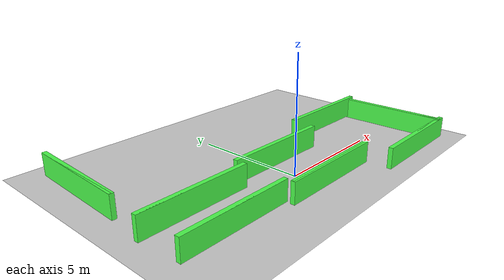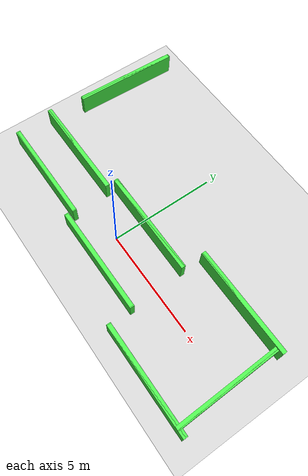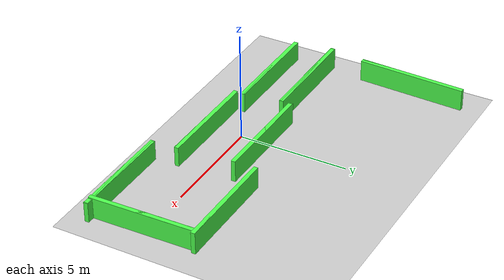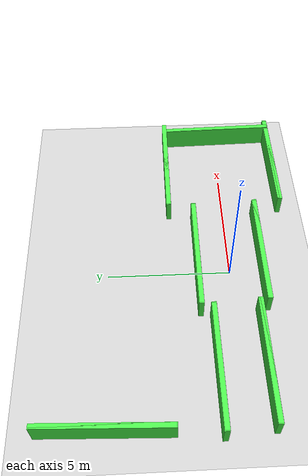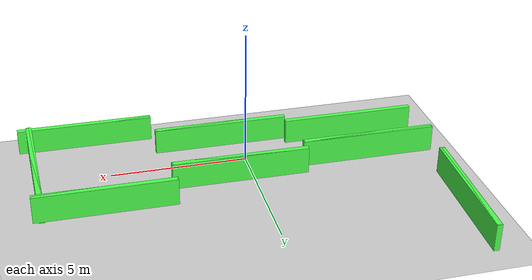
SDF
<sdf version="1.6">
 <world name="default">
  <light name="sun" type="directional">
   <pose>0 0 10 0 -0 0</pose>
   <diffuse>0.8 0.8 0.8 1</diffuse>
   <specular>0.1 0.1 0.1 1</specular>
   <attenuation>
    <range>1000</range>
    <constant>0.9</constant>
    <linear>0.01</linear>
    <quadratic>0.001</quadratic>
   </attenuation>
   <direction>-0.5 0.5 -1</direction>
  </light>
  <model name="ground_plane">
   <static>1</static>
   <link name="link">
    <collision name="collision">
     <geometry><plane><normal>0 0 1</normal><size>100 100</size></plane></geometry>
     <surface><friction><ode><mu>100</mu><mu2>50</mu2></ode></friction></surface>
    </collision>
    <visual name="visual">
     <cast_shadows>0</cast_shadows>
     <geometry><plane><normal>0 0 1</normal><size>100 100</size></plane></geometry>
     <material>
      <script><uri>file://media/materials/scripts/gazebo.material</uri><name>Gazebo/Grey</name></script>
     </material>
    </visual>
   </link>
  </model>
  <gravity>0 0 -9.8</gravity>
  <magnetic_field>6e-06 2.3e-05 -4.2e-05</magnetic_field>
  <atmosphere type="adiabatic"/>
  <physics name="default_physics" default="0" type="ode">
   <max_step_size>0.001</max_step_size>
   <real_time_factor>1</real_time_factor>
   <real_time_update_rate>1000</real_time_update_rate>
  </physics>
  <scene><ambient>0.4 0.4 0.4 1</ambient><background>0.7 0.7 0.7 1</background><shadows>1</shadows></scene>
  <spherical_coordinates>
   <surface_model>EARTH_WGS84</surface_model>
   <latitude_deg>0</latitude_deg>
   <longitude_deg>0</longitude_deg>
   <elevation>0</elevation>
   <heading_deg>0</heading_deg>
  </spherical_coordinates>
  <model name="wall_static">
   <link name="link">
    <inertial>
     <mass>1</mass>
     <inertia>
      <ixx>0.166667</ixx>
      <ixy>0</ixy>
      <ixz>0</ixz>
      <iyy>0.166667</iyy>
      <iyz>0</iyz>
      <izz>0.166667</izz>
     </inertia>
    </inertial>
    <visual name="ModelPreview_1::link::visual_1">
     <geometry><box><size>4.92373 0.195361 1</size></box></geometry>
     <material>
      <script><name>Gazebo/Grey</name><uri>file://media/materials/scripts/gazebo.material</uri></script>
      <ambient>0.3 1 0.3 1</ambient>
      <diffuse>0.7 0.7 0.7 1</diffuse>
      <specular>0.01 0.01 0.01 1</specular>
      <emissive>0 0 0 1</emissive>
      <shader type="vertex"><normal_map>__default__</normal_map></shader>
     </material>
    </visual>
    <visual name="visual">
     <geometry><box><size>5 0.2 1</size></box></geometry>
     <material>
      <script><name>Gazebo/Grey</name><uri>file://media/materials/scripts/gazebo.material</uri></script>
      <ambient>0.3 1 0.3 1</ambient>
      <diffuse>0.7 0.7 0.7 1</diffuse>
      <specular>0.01 0.01 0.01 1</specular>
      <emissive>0 0 0 1</emissive>
      <shader type="vertex"><normal_map>__default__</normal_map></shader>
     </material>
    </visual>
    <collision name="collision">
     <geometry><box><size>4.92373 0.195361 1</size></box></geometry>
     <surface>
      <friction>
       <ode><mu>1</mu><mu2>1</mu2><fdir1>0 0 0</fdir1><slip1>0</slip1><slip2>0</slip2></ode>
       <torsional>
        <coefficient>1</coefficient>
        <patch_radius>0</patch_radius>
        <surface_radius>0</surface_radius>
        <use_patch_radius>1</use_patch_radius>
        <ode><slip>0</slip></ode>
       </torsional>
      </friction>
      <bounce><restitution_coefficient>0</restitution_coefficient><threshold>1e+06</threshold></bounce>
      <contact>
       <collide_without_contact>0</collide_without_contact>
       <collide_without_contact_bitmask>1</collide_without_contact_bitmask>
       <collide_bitmask>1</collide_bitmask>
       <ode>
        <soft_cfm>0</soft_cfm>
        <soft_erp>0.2</soft_erp>
        <kp>1e+13</kp>
        <kd>1</kd>
        <max_vel>0.01</max_vel>
        <min_depth>0</min_depth>
       </ode>
       <bullet>
        <split_impulse>1</split_impulse>
        <split_impulse_penetration_threshold>-0.01</split_impulse_penetration_threshold>
        <soft_cfm>0</soft_cfm>
        <soft_erp>0.2</soft_erp>
        <kp>1e+13</kp>
        <kd>1</kd>
       </bullet>
      </contact>
     </surface>
    </collision>
   </link>
   <static>1</static>
   <pose>0.492242 1.32945 0.498032 2e-06 -0.000802 -0.003169</pose>
  </model>
  <model name="wall_static_0">
   <link name="link">
    <inertial>
     <mass>1</mass>
     <inertia>
      <ixx>0.166667</ixx>
      <ixy>0</ixy>
      <ixz>0</ixz>
      <iyy>0.166667</iyy>
      <iyz>0</iyz>
      <izz>0.166667</izz>
     </inertia>
    </inertial>
    <visual name="ModelPreview_1::link::visual_1">
     <geometry><box><size>4.92373 0.195361 1</size></box></geometry>
     <material>
      <script><name>Gazebo/Grey</name><uri>file://media/materials/scripts/gazebo.material</uri></script>
      <ambient>0.3 1 0.3 1</ambient>
      <diffuse>0.7 0.7 0.7 1</diffuse>
      <specular>0.01 0.01 0.01 1</specular>
      <emissive>0 0 0 1</emissive>
      <shader type="vertex"><normal_map>__default__</normal_map></shader>
     </material>
    </visual>
    <visual name="visual">
     <geometry><box><size>5 0.2 1</size></box></geometry>
     <material>
      <script><name>Gazebo/Grey</name><uri>file://media/materials/scripts/gazebo.material</uri></script>
      <ambient>0.3 1 0.3 1</ambient>
      <diffuse>0.7 0.7 0.7 1</diffuse>
      <specular>0.01 0.01 0.01 1</specular>
      <emissive>0 0 0 1</emissive>
      <shader type="vertex"><normal_map>__default__</normal_map></shader>
     </material>
    </visual>
    <collision name="collision">
     <geometry><box><size>4.92373 0.195361 1</size></box></geometry>
     <surface>
      <friction>
       <ode><mu>1</mu><mu2>1</mu2><fdir1>0 0 0</fdir1><slip1>0</slip1><slip2>0</slip2></ode>
       <torsional>
        <coefficient>1</coefficient>
        <patch_radius>0</patch_radius>
        <surface_radius>0</surface_radius>
        <use_patch_radius>1</use_patch_radius>
        <ode><slip>0</slip></ode>
       </torsional>
      </friction>
      <bounce><restitution_coefficient>0</restitution_coefficient><threshold>1e+06</threshold></bounce>
      <contact>
       <collide_without_contact>0</collide_without_contact>
       <collide_without_contact_bitmask>1</collide_without_contact_bitmask>
       <collide_bitmask>1</collide_bitmask>
       <ode>
        <soft_cfm>0</soft_cfm>
        <soft_erp>0.2</soft_erp>
        <kp>1e+13</kp>
        <kd>1</kd>
        <max_vel>0.01</max_vel>
        <min_depth>0</min_depth>
       </ode>
       <bullet>
        <split_impulse>1</split_impulse>
        <split_impulse_penetration_threshold>-0.01</split_impulse_penetration_threshold>
        <soft_cfm>0</soft_cfm>
        <soft_erp>0.2</soft_erp>
        <kp>1e+13</kp>
        <kd>1</kd>
       </bullet>
      </contact>
     </surface>
    </collision>
   </link>
   <static>1</static>
   <pose>-4.46002 0.876422 0.498031 0 -0 0</pose>
  </model>
  <model name="wall_static_1">
   <link name="link">
    <inertial>
     <mass>1</mass>
     <inertia>
      <ixx>0.166667</ixx>
      <ixy>0</ixy>
      <ixz>0</ixz>
      <iyy>0.166667</iyy>
      <iyz>0</iyz>
      <izz>0.166667</izz>
     </inertia>
    </inertial>
    <visual name="ModelPreview_1::link::visual_1">
     <geometry><box><size>4.92373 0.195361 1</size></box></geometry>
     <material>
      <script><name>Gazebo/Grey</name><uri>file://media/materials/scripts/gazebo.material</uri></script>
      <ambient>0.3 1 0.3 1</ambient>
      <diffuse>0.7 0.7 0.7 1</diffuse>
      <specular>0.01 0.01 0.01 1</specular>
      <emissive>0 0 0 1</emissive>
      <shader type="vertex"><normal_map>__default__</normal_map></shader>
     </material>
    </visual>
    <visual name="visual">
     <geometry><box><size>5 0.2 1</size></box></geometry>
     <material>
      <script><name>Gazebo/Grey</name><uri>file://media/materials/scripts/gazebo.material</uri></script>
      <ambient>0.3 1 0.3 1</ambient>
      <diffuse>0.7 0.7 0.7 1</diffuse>
      <specular>0.01 0.01 0.01 1</specular>
      <emissive>0 0 0 1</emissive>
      <shader type="vertex"><normal_map>__default__</normal_map></shader>
     </material>
    </visual>
    <collision name="collision">
     <geometry><box><size>4.92373 0.195361 1</size></box></geometry>
     <surface>
      <friction>
       <ode><mu>1</mu><mu2>1</mu2><fdir1>0 0 0</fdir1><slip1>0</slip1><slip2>0</slip2></ode>
       <torsional>
        <coefficient>1</coefficient>
        <patch_radius>0</patch_radius>
        <surface_radius>0</surface_radius>
        <use_patch_radius>1</use_patch_radius>
        <ode><slip>0</slip></ode>
       </torsional>
      </friction>
      <bounce><restitution_coefficient>0</restitution_coefficient><threshold>1e+06</threshold></bounce>
      <contact>
       <collide_without_contact>0</collide_without_contact>
       <collide_without_contact_bitmask>1</collide_without_contact_bitmask>
       <collide_bitmask>1</collide_bitmask>
       <ode>
        <soft_cfm>0</soft_cfm>
        <soft_erp>0.2</soft_erp>
        <kp>1e+13</kp>
        <kd>1</kd>
        <max_vel>0.01</max_vel>
        <min_depth>0</min_depth>
       </ode>
       <bullet>
        <split_impulse>1</split_impulse>
        <split_impulse_penetration_threshold>-0.01</split_impulse_penetration_threshold>
        <soft_cfm>0</soft_cfm>
        <soft_erp>0.2</soft_erp>
        <kp>1e+13</kp>
        <kd>1</kd>
       </bullet>
      </contact>
     </surface>
    </collision>
   </link>
   <static>1</static>
   <pose>-4.27529 -0.947344 0.409247 0 -0 0</pose>
  </model>
  <model name="wall_static_2">
   <link name="link">
    <inertial>
     <mass>1</mass>
     <inertia>
      <ixx>0.166667</ixx>
      <ixy>0</ixy>
      <ixz>0</ixz>
      <iyy>0.166667</iyy>
      <iyz>0</iyz>
      <izz>0.166667</izz>
     </inertia>
    </inertial>
    <visual name="ModelPreview_1::link::visual_1">
     <geometry><box><size>4.92373 0.195361 1</size></box></geometry>
     <material>
      <script><name>Gazebo/Grey</name><uri>file://media/materials/scripts/gazebo.material</uri></script>
      <ambient>0.3 1 0.3 1</ambient>
      <diffuse>0.7 0.7 0.7 1</diffuse>
      <specular>0.01 0.01 0.01 1</specular>
      <emissive>0 0 0 1</emissive>
      <shader type="vertex"><normal_map>__default__</normal_map></shader>
     </material>
    </visual>
    <visual name="visual">
     <geometry><box><size>5 0.2 1</size></box></geometry>
     <material>
      <script><name>Gazebo/Grey</name><uri>file://media/materials/scripts/gazebo.material</uri></script>
      <ambient>0.3 1 0.3 1</ambient>
      <diffuse>0.7 0.7 0.7 1</diffuse>
      <specular>0.01 0.01 0.01 1</specular>
      <emissive>0 0 0 1</emissive>
      <shader type="vertex"><normal_map>__default__</normal_map></shader>
     </material>
    </visual>
    <collision name="collision">
     <geometry><box><size>4.92373 0.195361 1</size></box></geometry>
     <surface>
      <friction>
       <ode><mu>1</mu><mu2>1</mu2><fdir1>0 0 0</fdir1><slip1>0</slip1><slip2>0</slip2></ode>
       <torsional>
        <coefficient>1</coefficient>
        <patch_radius>0</patch_radius>
        <surface_radius>0</surface_radius>
        <use_patch_radius>1</use_patch_radius>
        <ode><slip>0</slip></ode>
       </torsional>
      </friction>
      <bounce><restitution_coefficient>0</restitution_coefficient><threshold>1e+06</threshold></bounce>
      <contact>
       <collide_without_contact>0</collide_without_contact>
       <collide_without_contact_bitmask>1</collide_without_contact_bitmask>
       <collide_bitmask>1</collide_bitmask>
       <ode>
        <soft_cfm>0</soft_cfm>
        <soft_erp>0.2</soft_erp>
        <kp>1e+13</kp>
        <kd>1</kd>
        <max_vel>0.01</max_vel>
        <min_depth>0</min_depth>
       </ode>
       <bullet>
        <split_impulse>1</split_impulse>
        <split_impulse_penetration_threshold>-0.01</split_impulse_penetration_threshold>
        <soft_cfm>0</soft_cfm>
        <soft_erp>0.2</soft_erp>
        <kp>1e+13</kp>
        <kd>1</kd>
       </bullet>
      </contact>
     </surface>
    </collision>
   </link>
   <static>1</static>
   <pose>0.655642 -1.32273 0.412316 0 -0 0</pose>
  </model>
  <model name="wall_static_3">
   <link name="link">
    <inertial>
     <mass>1</mass>
     <inertia>
      <ixx>0.166667</ixx>
      <ixy>0</ixy>
      <ixz>0</ixz>
      <iyy>0.166667</iyy>
      <iyz>0</iyz>
      <izz>0.166667</izz>
     </inertia>
    </inertial>
    <visual name="ModelPreview_1::link::visual_1">
     <geometry><box><size>4.92373 0.195361 1</size></box></geometry>
     <material>
      <script><name>Gazebo/Grey</name><uri>file://media/materials/scripts/gazebo.material</uri></script>
      <ambient>0.3 1 0.3 1</ambient>
      <diffuse>0.7 0.7 0.7 1</diffuse>
      <specular>0.01 0.01 0.01 1</specular>
      <emissive>0 0 0 1</emissive>
      <shader type="vertex"><normal_map>__default__</normal_map></shader>
     </material>
    </visual>
    <visual name="visual">
     <geometry><box><size>5 0.2 1</size></box></geometry>
     <material>
      <script><name>Gazebo/Grey</name><uri>file://media/materials/scripts/gazebo.material</uri></script>
      <ambient>0.3 1 0.3 1</ambient>
      <diffuse>0.7 0.7 0.7 1</diffuse>
      <specular>0.01 0.01 0.01 1</specular>
      <emissive>0 0 0 1</emissive>
      <shader type="vertex"><normal_map>__default__</normal_map></shader>
     </material>
    </visual>
    <collision name="collision">
     <geometry><box><size>4.92373 0.195361 1</size></box></geometry>
     <surface>
      <friction>
       <ode><mu>1</mu><mu2>1</mu2><fdir1>0 0 0</fdir1><slip1>0</slip1><slip2>0</slip2></ode>
       <torsional>
        <coefficient>1</coefficient>
        <patch_radius>0</patch_radius>
        <surface_radius>0</surface_radius>
        <use_patch_radius>1</use_patch_radius>
        <ode><slip>0</slip></ode>
       </torsional>
      </friction>
      <bounce><restitution_coefficient>0</restitution_coefficient><threshold>1e+06</threshold></bounce>
      <contact>
       <collide_without_contact>0</collide_without_contact>
       <collide_without_contact_bitmask>1</collide_without_contact_bitmask>
       <collide_bitmask>1</collide_bitmask>
       <ode>
        <soft_cfm>0</soft_cfm>
        <soft_erp>0.2</soft_erp>
        <kp>1e+13</kp>
        <kd>1</kd>
        <max_vel>0.01</max_vel>
        <min_depth>0</min_depth>
       </ode>
       <bullet>
        <split_impulse>1</split_impulse>
        <split_impulse_penetration_threshold>-0.01</split_impulse_penetration_threshold>
        <soft_cfm>0</soft_cfm>
        <soft_erp>0.2</soft_erp>
        <kp>1e+13</kp>
        <kd>1</kd>
       </bullet>
      </contact>
     </surface>
    </collision>
   </link>
   <static>1</static>
   <pose>7.68733 -0.058269 0.459833 0 -0 1.59255</pose>
  </model>
  <model name="wall_static_4">
   <link name="link">
    <inertial>
     <mass>1</mass>
     <inertia>
      <ixx>0.166667</ixx>
      <ixy>0</ixy>
      <ixz>0</ixz>
      <iyy>0.166667</iyy>
      <iyz>0</iyz>
      <izz>0.166667</izz>
     </inertia>
    </inertial>
    <visual name="ModelPreview_1::link::visual_1">
     <geometry><box><size>4.92373 0.195361 1</size></box></geometry>
     <material>
      <script><name>Gazebo/Grey</name><uri>file://media/materials/scripts/gazebo.material</uri></script>
      <ambient>0.3 1 0.3 1</ambient>
      <diffuse>0.7 0.7 0.7 1</diffuse>
      <specular>0.01 0.01 0.01 1</specular>
      <emissive>0 0 0 1</emissive>
      <shader type="vertex"><normal_map>__default__</normal_map></shader>
     </material>
    </visual>
    <visual name="visual">
     <geometry><box><size>5 0.2 1</size></box></geometry>
     <material>
      <script><name>Gazebo/Grey</name><uri>file://media/materials/scripts/gazebo.material</uri></script>
      <ambient>0.3 1 0.3 1</ambient>
      <diffuse>0.7 0.7 0.7 1</diffuse>
      <specular>0.01 0.01 0.01 1</specular>
      <emissive>0 0 0 1</emissive>
      <shader type="vertex"><normal_map>__default__</normal_map></shader>
     </material>
    </visual>
    <collision name="collision">
     <geometry><box><size>4.92373 0.195361 1</size></box></geometry>
     <surface>
      <friction>
       <ode><mu>1</mu><mu2>1</mu2><fdir1>0 0 0</fdir1><slip1>0</slip1><slip2>0</slip2></ode>
       <torsional>
        <coefficient>1</coefficient>
        <patch_radius>0</patch_radius>
        <surface_radius>0</surface_radius>
        <use_patch_radius>1</use_patch_radius>
        <ode><slip>0</slip></ode>
       </torsional>
      </friction>
      <bounce><restitution_coefficient>0</restitution_coefficient><threshold>1e+06</threshold></bounce>
      <contact>
       <collide_without_contact>0</collide_without_contact>
       <collide_without_contact_bitmask>1</collide_without_contact_bitmask>
       <collide_bitmask>1</collide_bitmask>
       <ode>
        <soft_cfm>0</soft_cfm>
        <soft_erp>0.2</soft_erp>
        <kp>1e+13</kp>
        <kd>1</kd>
        <max_vel>0.01</max_vel>
        <min_depth>0</min_depth>
       </ode>
       <bullet>
        <split_impulse>1</split_impulse>
        <split_impulse_penetration_threshold>-0.01</split_impulse_penetration_threshold>
        <soft_cfm>0</soft_cfm>
        <soft_erp>0.2</soft_erp>
        <kp>1e+13</kp>
        <kd>1</kd>
       </bullet>
      </contact>
     </surface>
    </collision>
   </link>
   <static>1</static>
   <pose>-6.5731 4.99933 0.512054 0 -0 1.53428</pose>
  </model>
  <model name="wall_static_5">
   <link name="link">
    <inertial>
     <mass>1</mass>
     <inertia>
      <ixx>0.166667</ixx>
      <ixy>0</ixy>
      <ixz>0</ixz>
      <iyy>0.166667</iyy>
      <iyz>0</iyz>
      <izz>0.166667</izz>
     </inertia>
    </inertial>
    <visual name="ModelPreview_1::link::visual_1">
     <geometry><box><size>4.92373 0.195361 1</size></box></geometry>
     <material>
      <script><name>Gazebo/Grey</name><uri>file://media/materials/scripts/gazebo.material</uri></script>
      <ambient>0.3 1 0.3 1</ambient>
      <diffuse>0.7 0.7 0.7 1</diffuse>
      <specular>0.01 0.01 0.01 1</specular>
      <emissive>0 0 0 1</emissive>
      <shader type="vertex"><normal_map>__default__</normal_map></shader>
     </material>
    </visual>
    <visual name="visual">
     <geometry><box><size>5 0.2 1</size></box></geometry>
     <material>
      <script><name>Gazebo/Grey</name><uri>file://media/materials/scripts/gazebo.material</uri></script>
      <ambient>0.3 1 0.3 1</ambient>
      <diffuse>0.7 0.7 0.7 1</diffuse>
      <specular>0.01 0.01 0.01 1</specular>
      <emissive>0 0 0 1</emissive>
      <shader type="vertex"><normal_map>__default__</normal_map></shader>
     </material>
    </visual>
    <collision name="collision">
     <geometry><box><size>4.92373 0.195361 1</size></box></geometry>
     <surface>
      <friction>
       <ode><mu>1</mu><mu2>1</mu2><fdir1>0 0 0</fdir1><slip1>0</slip1><slip2>0</slip2></ode>
       <torsional>
        <coefficient>1</coefficient>
        <patch_radius>0</patch_radius>
        <surface_radius>0</surface_radius>
        <use_patch_radius>1</use_patch_radius>
        <ode><slip>0</slip></ode>
       </torsional>
      </friction>
      <bounce><restitution_coefficient>0</restitution_coefficient><threshold>1e+06</threshold></bounce>
      <contact>
       <collide_without_contact>0</collide_without_contact>
       <collide_without_contact_bitmask>1</collide_without_contact_bitmask>
       <collide_bitmask>1</collide_bitmask>
       <ode>
        <soft_cfm>0</soft_cfm>
        <soft_erp>0.2</soft_erp>
        <kp>1e+13</kp>
        <kd>1</kd>
        <max_vel>0.01</max_vel>
        <min_depth>0</min_depth>
       </ode>
       <bullet>
        <split_impulse>1</split_impulse>
        <split_impulse_penetration_threshold>-0.01</split_impulse_penetration_threshold>
        <soft_cfm>0</soft_cfm>
        <soft_erp>0.2</soft_erp>
        <kp>1e+13</kp>
        <kd>1</kd>
       </bullet>
      </contact>
     </surface>
    </collision>
   </link>
   <static>1</static>
   <pose>5.66632 -2.46128 0.414062 0 -0 0</pose>
  </model>
  <model name="wall_static_6">
   <link name="link">
    <inertial>
     <mass>1</mass>
     <inertia>
      <ixx>0.166667</ixx>
      <ixy>0</ixy>
      <ixz>0</ixz>
      <iyy>0.166667</iyy>
      <iyz>0</iyz>
      <izz>0.166667</izz>
     </inertia>
    </inertial>
    <visual name="ModelPreview_1::link::visual_1">
     <geometry><box><size>4.92373 0.195361 1</size></box></geometry>
     <material>
      <script><name>Gazebo/Grey</name><uri>file://media/materials/scripts/gazebo.material</uri></script>
      <ambient>0.3 1 0.3 1</ambient>
      <diffuse>0.7 0.7 0.7 1</diffuse>
      <specular>0.01 0.01 0.01 1</specular>
      <emissive>0 0 0 1</emissive>
      <shader type="vertex"><normal_map>__default__</normal_map></shader>
     </material>
    </visual>
    <visual name="visual">
     <geometry><box><size>5 0.2 1</size></box></geometry>
     <material>
      <script><name>Gazebo/Grey</name><uri>file://media/materials/scripts/gazebo.material</uri></script>
      <ambient>0.3 1 0.3 1</ambient>
      <diffuse>0.7 0.7 0.7 1</diffuse>
      <specular>0.01 0.01 0.01 1</specular>
      <emissive>0 0 0 1</emissive>
      <shader type="vertex"><normal_map>__default__</normal_map></shader>
     </material>
    </visual>
    <collision name="collision">
     <geometry><box><size>4.92373 0.195361 1</size></box></geometry>
     <surface>
      <friction>
       <ode><mu>1</mu><mu2>1</mu2><fdir1>0 0 0</fdir1><slip1>0</slip1><slip2>0</slip2></ode>
       <torsional>
        <coefficient>1</coefficient>
        <patch_radius>0</patch_radius>
        <surface_radius>0</surface_radius>
        <use_patch_radius>1</use_patch_radius>
        <ode><slip>0</slip></ode>
       </torsional>
      </friction>
      <bounce><restitution_coefficient>0</restitution_coefficient><threshold>1e+06</threshold></bounce>
      <contact>
       <collide_without_contact>0</collide_without_contact>
       <collide_without_contact_bitmask>1</collide_without_contact_bitmask>
       <collide_bitmask>1</collide_bitmask>
       <ode>
        <soft_cfm>0</soft_cfm>
        <soft_erp>0.2</soft_erp>
        <kp>1e+13</kp>
        <kd>1</kd>
        <max_vel>0.01</max_vel>
        <min_depth>0</min_depth>
       </ode>
       <bullet>
        <split_impulse>1</split_impulse>
        <split_impulse_penetration_threshold>-0.01</split_impulse_penetration_threshold>
        <soft_cfm>0</soft_cfm>
        <soft_erp>0.2</soft_erp>
        <kp>1e+13</kp>
        <kd>1</kd>
       </bullet>
      </contact>
     </surface>
    </collision>
   </link>
   <static>1</static>
   <pose>5.43993 2.37457 0.536519 0 -0 0</pose>
  </model>
 </world>
</sdf>
